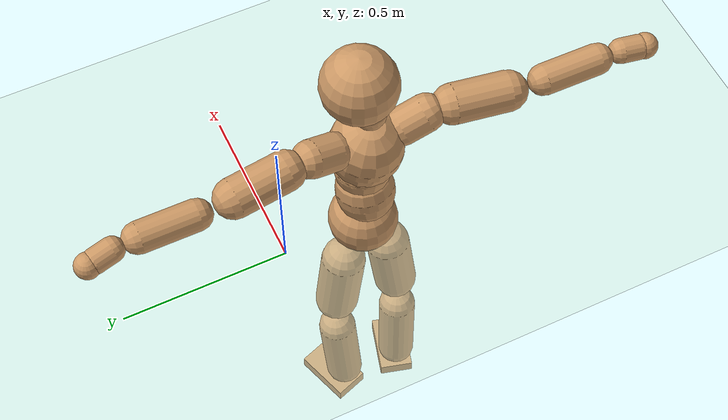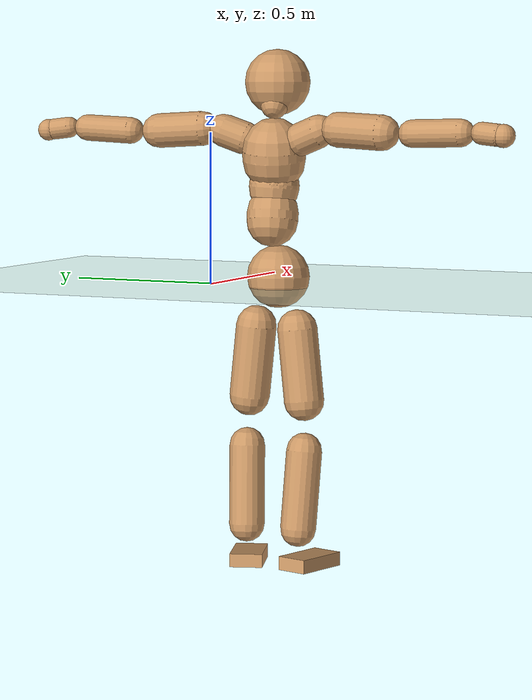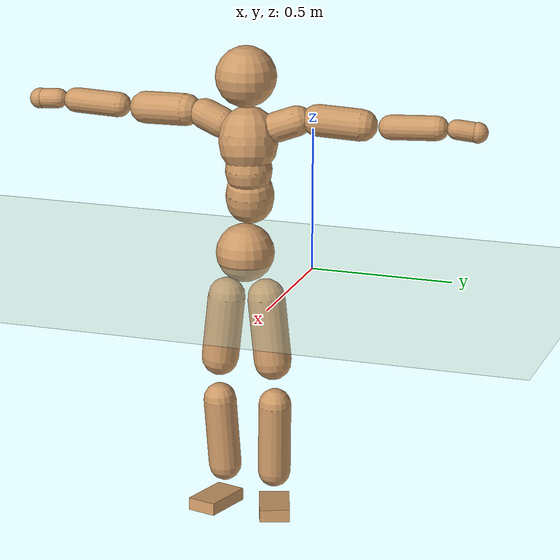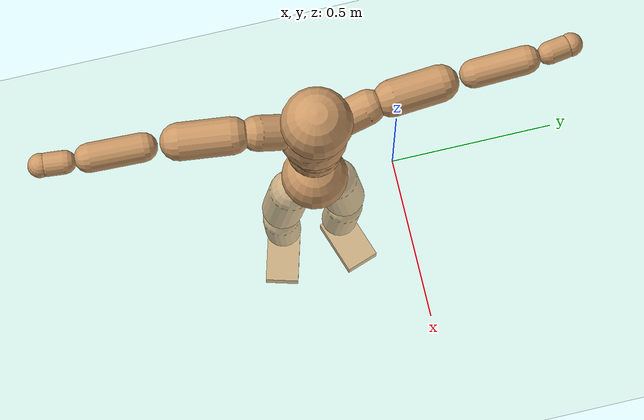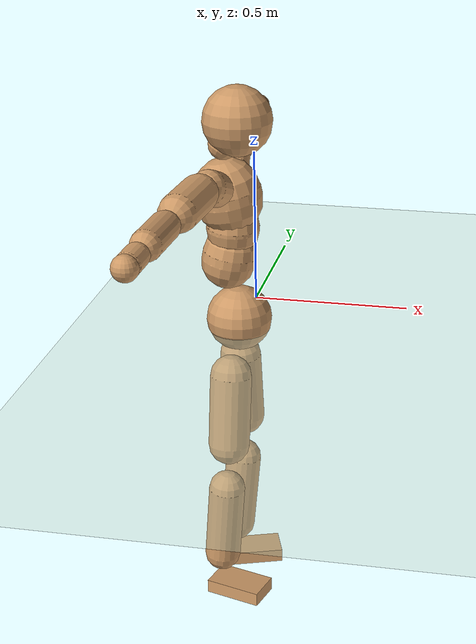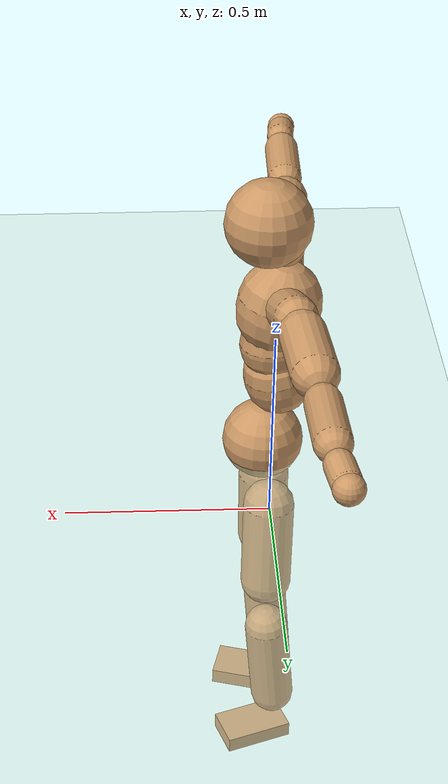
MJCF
<mujoco model="humanoid">
  <compiler coordinate="local"/>
  <default>
    <joint damping="0.0" armature="0.01" stiffness="0.0" limited="true"/>
    <geom conaffinity="1" condim="3" contype="7" margin="0.001" rgba="0.8 0.6 .4 1"/>
  </default>
  <asset>
    <texture type="skybox" builtin="gradient" rgb1=".4 .5 .6" rgb2="0 0 0" width="100" height="100"/>
    <texture builtin="flat" height="1278" mark="cross" markrgb="1 1 1" name="texgeom" random="0.01" rgb1="0.8 0.6 0.4" rgb2="0.8 0.6 0.4" type="cube" width="127"/>
    <texture builtin="checker" height="100" name="texplane" rgb1="0 0 0" rgb2="0.8 0.8 0.8" type="2d" width="100"/>
    <material name="MatPlane" reflectance="0.5" shininess="1" specular="1" texrepeat="60 60" texture="texplane"/>
    <material name="geom" texture="texgeom" texuniform="true"/>
  </asset>
  <worldbody>
    <light cutoff="100" diffuse="1 1 1" dir="-0 0 -1.3" directional="true" exponent="1" pos="0 0 1.3" specular=".1 .1 .1"/>
    <geom conaffinity="1" condim="3" name="floor" pos="0 0 0" rgba="0.8 0.9 0.8 1" size="100 100 .2" type="plane" material="MatPlane"/>
    <body name="Pelvis" pos="-0.0012 -0.246 0.0342">
      <freejoint name="Pelvis"/>
      <geom type="sphere" contype="1" conaffinity="1" density="500" size="0.1030" pos="0.0000 0.0000 0.0000" name="Pelvis"/>
      <body name="L_Hip" pos="-0.0166 0.0637 -0.0845">
        <joint name="L_Hip_x" type="hinge" pos="0 0 0" axis="1 0 0" stiffness="800" damping="80" armature="0.02" range="-180.0000 180.0000"/>
        <joint name="L_Hip_y" type="hinge" pos="0 0 0" axis="0 1 0" stiffness="800" damping="80" armature="0.02" range="-180.0000 180.0000"/>
        <joint name="L_Hip_z" type="hinge" pos="0 0 0" axis="0 0 1" stiffness="800" damping="80" armature="0.02" range="-180.0000 180.0000"/>
        <geom type="capsule" contype="1" conaffinity="1" density="500" fromto="0.0011 0.0087 -0.0778 0.0046 0.0347 -0.3114" size="0.0662" name="L_Hip"/>
        <body name="L_Knee" pos="0.0057 0.0434 -0.3892">
          <joint name="L_Knee_x" type="hinge" pos="0 0 0" axis="1 0 0" stiffness="800" damping="80" armature="0.02" range="-180.0000 180.0000"/>
          <joint name="L_Knee_y" type="hinge" pos="0 0 0" axis="0 1 0" stiffness="800" damping="80" armature="0.02" range="-180.0000 180.0000"/>
          <joint name="L_Knee_z" type="hinge" pos="0 0 0" axis="0 0 1" stiffness="800" damping="80" armature="0.02" range="-180.0000 180.0000"/>
          <geom type="capsule" contype="1" conaffinity="1" density="500" fromto="-0.0079 -0.0031 -0.0867 -0.0317 -0.0125 -0.3466" size="0.0582" name="L_Knee"/>
          <body name="L_Ankle" pos="-0.0396 -0.0156 -0.4333">
            <joint name="L_Ankle_x" type="hinge" pos="0 0 0" axis="1 0 0" stiffness="800" damping="80" armature="0.02" range="-180.0000 180.0000"/>
            <joint name="L_Ankle_y" type="hinge" pos="0 0 0" axis="0 1 0" stiffness="800" damping="80" armature="0.02" range="-180.0000 180.0000"/>
            <joint name="L_Ankle_z" type="hinge" pos="0 0 0" axis="0 0 1" stiffness="800" damping="80" armature="0.02" range="-180.0000 180.0000"/>
            <geom type="box" contype="1" conaffinity="1" density="500" pos="0.0619 0.0212 -0.0307" size="0.0909 0.0539 0.0221" quat="0.9864 0.0000 0.0000 0.1644" name="L_Ankle"/>
            <body name="L_Toe" pos="0.1239 0.0425 -0.0615">
              <joint name="L_Toe_x" type="hinge" pos="0 0 0" axis="1 0 0" stiffness="500" damping="50" armature="0.02" range="-180.0000 180.0000"/>
              <joint name="L_Toe_y" type="hinge" pos="0 0 0" axis="0 1 0" stiffness="500" damping="50" armature="0.02" range="-180.0000 180.0000"/>
              <joint name="L_Toe_z" type="hinge" pos="0 0 0" axis="0 0 1" stiffness="500" damping="50" armature="0.02" range="-180.0000 180.0000"/>
              <geom type="box" contype="1" conaffinity="1" density="500" pos="0.0000 0.0000 0.0300" size="0.0011 0.0026 0.0011" quat="0.9856 0.0000 0.0000 0.1690" name="L_Toe"/>
            </body>
          </body>
        </body>
      </body>
      <body name="R_Hip" pos="-0.012 -0.0654 -0.0925">
        <joint name="R_Hip_x" type="hinge" pos="0 0 0" axis="1 0 0" stiffness="800" damping="80" armature="0.02" range="-180.0000 180.0000"/>
        <joint name="R_Hip_y" type="hinge" pos="0 0 0" axis="0 1 0" stiffness="800" damping="80" armature="0.02" range="-180.0000 180.0000"/>
        <joint name="R_Hip_z" type="hinge" pos="0 0 0" axis="0 0 1" stiffness="800" damping="80" armature="0.02" range="-180.0000 180.0000"/>
        <geom type="capsule" contype="1" conaffinity="1" density="500" fromto="-0.0015 -0.0087 -0.0774 -0.0060 -0.0350 -0.3095" size="0.0657" name="R_Hip"/>
        <body name="R_Knee" pos="-0.0075 -0.0437 -0.3869">
          <joint name="R_Knee_x" type="hinge" pos="0 0 0" axis="1 0 0" stiffness="800" damping="80" armature="0.02" range="-180.0000 180.0000"/>
          <joint name="R_Knee_y" type="hinge" pos="0 0 0" axis="0 1 0" stiffness="800" damping="80" armature="0.02" range="-180.0000 180.0000"/>
          <joint name="R_Knee_z" type="hinge" pos="0 0 0" axis="0 0 1" stiffness="800" damping="80" armature="0.02" range="-180.0000 180.0000"/>
          <geom type="capsule" contype="1" conaffinity="1" density="500" fromto="-0.0075 0.0038 -0.0852 -0.0299 0.0151 -0.3409" size="0.0584" name="R_Knee"/>
          <body name="R_Ankle" pos="-0.0373 0.0189 -0.4261">
            <joint name="R_Ankle_x" type="hinge" pos="0 0 0" axis="1 0 0" stiffness="800" damping="80" armature="0.02" range="-180.0000 180.0000"/>
            <joint name="R_Ankle_y" type="hinge" pos="0 0 0" axis="0 1 0" stiffness="800" damping="80" armature="0.02" range="-180.0000 180.0000"/>
            <joint name="R_Ankle_z" type="hinge" pos="0 0 0" axis="0 0 1" stiffness="800" damping="80" armature="0.02" range="-180.0000 180.0000"/>
            <geom type="box" contype="1" conaffinity="1" density="500" pos="0.0662 -0.0185 -0.0311" size="0.0927 0.0534 0.0224" quat="0.9907 0.0000 0.0000 -0.1358" name="R_Ankle"/>
            <body name="R_Toe" pos="0.1325 -0.037 -0.0622">
              <joint name="R_Toe_x" type="hinge" pos="0 0 0" axis="1 0 0" stiffness="500" damping="50" armature="0.02" range="-180.0000 180.0000"/>
              <joint name="R_Toe_y" type="hinge" pos="0 0 0" axis="0 1 0" stiffness="500" damping="50" armature="0.02" range="-180.0000 180.0000"/>
              <joint name="R_Toe_z" type="hinge" pos="0 0 0" axis="0 0 1" stiffness="500" damping="50" armature="0.02" range="-180.0000 180.0000"/>
              <geom type="box" contype="1" conaffinity="1" density="500" pos="0.0000 0.0000 0.0316" size="0.0011 0.0026 0.0011" quat="0.9919 0.0000 0.0000 -0.1270" name="R_Toe"/>
            </body>
          </body>
        </body>
      </body>
      <body name="Torso" pos="-0.0441 0.0046 0.1279">
        <joint name="Torso_x" type="hinge" pos="0 0 0" axis="1 0 0" stiffness="1000" damping="100" armature="0.02" range="-180.0000 180.0000"/>
        <joint name="Torso_y" type="hinge" pos="0 0 0" axis="0 1 0" stiffness="1000" damping="100" armature="0.02" range="-180.0000 180.0000"/>
        <joint name="Torso_z" type="hinge" pos="0 0 0" axis="0 0 1" stiffness="1000" damping="100" armature="0.02" range="-180.0000 180.0000"/>
        <geom type="capsule" contype="1" conaffinity="1" density="500" fromto="0.0158 0.0026 0.0833 0.0105 0.0017 0.0555" size="0.0841" name="Torso"/>
        <body name="Spine" pos="0.0264 0.0043 0.1389">
          <joint name="Spine_x" type="hinge" pos="0 0 0" axis="1 0 0" stiffness="1000" damping="100" armature="0.02" range="-180.0000 180.0000"/>
          <joint name="Spine_y" type="hinge" pos="0 0 0" axis="0 1 0" stiffness="1000" damping="100" armature="0.02" range="-180.0000 180.0000"/>
          <joint name="Spine_z" type="hinge" pos="0 0 0" axis="0 0 1" stiffness="1000" damping="100" armature="0.02" range="-180.0000 180.0000"/>
          <geom type="capsule" contype="1" conaffinity="1" density="500" fromto="0.0018 -0.0017 0.0341 0.0012 -0.0011 0.0228" size="0.0822" name="Spine"/>
          <body name="Chest" pos="0.0031 -0.0029 0.0569">
            <joint name="Chest_x" type="hinge" pos="0 0 0" axis="1 0 0" stiffness="1000" damping="100" armature="0.02" range="-180.0000 180.0000"/>
            <joint name="Chest_y" type="hinge" pos="0 0 0" axis="0 1 0" stiffness="1000" damping="100" armature="0.02" range="-180.0000 180.0000"/>
            <joint name="Chest_z" type="hinge" pos="0 0 0" axis="0 0 1" stiffness="1000" damping="100" armature="0.02" range="-180.0000 180.0000"/>
            <geom type="capsule" contype="1" conaffinity="1" density="500" fromto="-0.0164 -0.0047 0.0900 -0.0109 -0.0031 0.0600" size="0.1038" name="Chest"/>
            <body name="Neck" pos="-0.0355 -0.0123 0.2176">
              <joint name="Neck_x" type="hinge" pos="0 0 0" axis="1 0 0" stiffness="500" damping="50" armature="0.02" range="-180.0000 180.0000"/>
              <joint name="Neck_y" type="hinge" pos="0 0 0" axis="0 1 0" stiffness="500" damping="50" armature="0.02" range="-180.0000 180.0000"/>
              <joint name="Neck_z" type="hinge" pos="0 0 0" axis="0 0 1" stiffness="500" damping="50" armature="0.02" range="-180.0000 180.0000"/>
              <geom type="capsule" contype="1" conaffinity="1" density="500" fromto="0.0108 0.0021 0.0180 0.0430 0.0085 0.0721" size="0.046" name="Neck"/>
              <body name="Head" pos="0.0538 0.0107 0.0902">
                <joint name="Head_x" type="hinge" pos="0 0 0" axis="1 0 0" stiffness="500" damping="50" armature="0.02" range="-180.0000 180.0000"/>
                <joint name="Head_y" type="hinge" pos="0 0 0" axis="0 1 0" stiffness="500" damping="50" armature="0.02" range="-180.0000 180.0000"/>
                <joint name="Head_z" type="hinge" pos="0 0 0" axis="0 0 1" stiffness="500" damping="50" armature="0.02" range="-180.0000 180.0000"/>
                <geom type="sphere" contype="1" conaffinity="1" density="500" size="0.1068" pos="0.0000 0.0000 0.0000" name="Head"/>
              </body>
            </body>
            <body name="L_Thorax" pos="-0.0209 0.0694 0.1169">
              <joint name="L_Thorax_x" type="hinge" pos="0 0 0" axis="1 0 0" stiffness="500" damping="50" armature="0.02" range="-180.0000 180.0000"/>
              <joint name="L_Thorax_y" type="hinge" pos="0 0 0" axis="0 1 0" stiffness="500" damping="50" armature="0.02" range="-180.0000 180.0000"/>
              <joint name="L_Thorax_z" type="hinge" pos="0 0 0" axis="0 0 1" stiffness="500" damping="50" armature="0.02" range="-180.0000 180.0000"/>
              <geom type="capsule" contype="1" conaffinity="1" density="500" fromto="-0.0039 0.0240 0.0086 -0.0154 0.0958 0.0345" size="0.0535" name="L_Thorax"/>
              <body name="L_Shoulder" pos="-0.0193 0.1198 0.0431">
                <joint name="L_Shoulder_x" type="hinge" pos="0 0 0" axis="1 0 0" stiffness="500" damping="50" armature="0.02" range="-720.0000 720.0000"/>
                <joint name="L_Shoulder_y" type="hinge" pos="0 0 0" axis="0 1 0" stiffness="500" damping="50" armature="0.02" range="-720.0000 720.0000"/>
                <joint name="L_Shoulder_z" type="hinge" pos="0 0 0" axis="0 0 1" stiffness="500" damping="50" armature="0.02" range="-720.0000 720.0000"/>
                <geom type="capsule" contype="1" conaffinity="1" density="500" fromto="-0.0047 0.0503 -0.0029 -0.0188 0.2014 -0.0114" size="0.0564" name="L_Shoulder"/>
                <body name="L_Elbow" pos="-0.0235 0.2517 -0.0143">
                  <joint name="L_Elbow_x" type="hinge" pos="0 0 0" axis="1 0 0" stiffness="500" damping="50" armature="0.02" range="-720.0000 720.0000"/>
                  <joint name="L_Elbow_y" type="hinge" pos="0 0 0" axis="0 1 0" stiffness="500" damping="50" armature="0.02" range="-720.0000 720.0000"/>
                  <joint name="L_Elbow_z" type="hinge" pos="0 0 0" axis="0 0 1" stiffness="500" damping="50" armature="0.02" range="-720.0000 720.0000"/>
                  <geom type="capsule" contype="1" conaffinity="1" density="500" fromto="-0.0014 0.0531 0.0026 -0.0056 0.2124 0.0105" size="0.0435" name="L_Elbow"/>
                  <body name="L_Wrist" pos="-0.007 0.2655 0.0131">
                    <joint name="L_Wrist_x" type="hinge" pos="0 0 0" axis="1 0 0" stiffness="300" damping="30" armature="0.02" range="-180.0000 180.0000"/>
                    <joint name="L_Wrist_y" type="hinge" pos="0 0 0" axis="0 1 0" stiffness="300" damping="30" armature="0.02" range="-180.0000 180.0000"/>
                    <joint name="L_Wrist_z" type="hinge" pos="0 0 0" axis="0 0 1" stiffness="300" damping="30" armature="0.02" range="-180.0000 180.0000"/>
                    <geom type="capsule" contype="1" conaffinity="1" density="500" fromto="-0.0031 0.0175 -0.0022 -0.0126 0.0701 -0.0087" size="0.0347" name="L_Wrist"/>
                    <body name="L_Hand" pos="-0.0157 0.0876 -0.0109">
                      <joint name="L_Hand_x" type="hinge" pos="0 0 0" axis="1 0 0" stiffness="300" damping="30" armature="0.02" range="-180.0000 180.0000"/>
                      <joint name="L_Hand_y" type="hinge" pos="0 0 0" axis="0 1 0" stiffness="300" damping="30" armature="0.02" range="-180.0000 180.0000"/>
                      <joint name="L_Hand_z" type="hinge" pos="0 0 0" axis="0 0 1" stiffness="300" damping="30" armature="0.02" range="-180.0000 180.0000"/>
                      <geom type="sphere" contype="1" conaffinity="1" density="500" size="0.0360" pos="0.0000 0.0000 0.0000" name="L_Hand"/>
                    </body>
                  </body>
                </body>
              </body>
            </body>
            <body name="R_Thorax" pos="-0.0256 -0.0805 0.1155">
              <joint name="R_Thorax_x" type="hinge" pos="0 0 0" axis="1 0 0" stiffness="500" damping="50" armature="0.02" range="-180.0000 180.0000"/>
              <joint name="R_Thorax_y" type="hinge" pos="0 0 0" axis="0 1 0" stiffness="500" damping="50" armature="0.02" range="-180.0000 180.0000"/>
              <joint name="R_Thorax_z" type="hinge" pos="0 0 0" axis="0 0 1" stiffness="500" damping="50" armature="0.02" range="-180.0000 180.0000"/>
              <geom type="capsule" contype="1" conaffinity="1" density="500" fromto="-0.0017 -0.0223 0.0090 -0.0070 -0.0892 0.0359" size="0.0538" name="R_Thorax"/>
              <body name="R_Shoulder" pos="-0.0087 -0.1114 0.0449">
                <joint name="R_Shoulder_x" type="hinge" pos="0 0 0" axis="1 0 0" stiffness="500" damping="50" armature="0.02" range="-720.0000 720.0000"/>
                <joint name="R_Shoulder_y" type="hinge" pos="0 0 0" axis="0 1 0" stiffness="500" damping="50" armature="0.02" range="-720.0000 720.0000"/>
                <joint name="R_Shoulder_z" type="hinge" pos="0 0 0" axis="0 0 1" stiffness="500" damping="50" armature="0.02" range="-720.0000 720.0000"/>
                <geom type="capsule" contype="1" conaffinity="1" density="500" fromto="-0.0066 -0.0517 -0.0027 -0.0264 -0.2068 -0.0106" size="0.0572" name="R_Shoulder"/>
                <body name="R_Elbow" pos="-0.033 -0.2586 -0.0133">
                  <joint name="R_Elbow_x" type="hinge" pos="0 0 0" axis="1 0 0" stiffness="500" damping="50" armature="0.02" range="-720.0000 720.0000"/>
                  <joint name="R_Elbow_y" type="hinge" pos="0 0 0" axis="0 1 0" stiffness="500" damping="50" armature="0.02" range="-720.0000 720.0000"/>
                  <joint name="R_Elbow_z" type="hinge" pos="0 0 0" axis="0 0 1" stiffness="500" damping="50" armature="0.02" range="-720.0000 720.0000"/>
                  <geom type="capsule" contype="1" conaffinity="1" density="500" fromto="-0.0013 -0.0539 0.0014 -0.0053 -0.2158 0.0056" size="0.0442" name="R_Elbow"/>
                  <body name="R_Wrist" pos="-0.0067 -0.2697 0.007">
                    <joint name="R_Wrist_x" type="hinge" pos="0 0 0" axis="1 0 0" stiffness="300" damping="30" armature="0.02" range="-180.0000 180.0000"/>
                    <joint name="R_Wrist_y" type="hinge" pos="0 0 0" axis="0 1 0" stiffness="300" damping="30" armature="0.02" range="-180.0000 180.0000"/>
                    <joint name="R_Wrist_z" type="hinge" pos="0 0 0" axis="0 0 1" stiffness="300" damping="30" armature="0.02" range="-180.0000 180.0000"/>
                    <geom type="capsule" contype="1" conaffinity="1" density="500" fromto="-0.0020 -0.0181 -0.0018 -0.0081 -0.0723 -0.0071" size="0.0356" name="R_Wrist"/>
                    <body name="R_Hand" pos="-0.0102 -0.0904 -0.0089">
                      <joint name="R_Hand_x" type="hinge" pos="0 0 0" axis="1 0 0" stiffness="300" damping="30" armature="0.02" range="-180.0000 180.0000"/>
                      <joint name="R_Hand_y" type="hinge" pos="0 0 0" axis="0 1 0" stiffness="300" damping="30" armature="0.02" range="-180.0000 180.0000"/>
                      <joint name="R_Hand_z" type="hinge" pos="0 0 0" axis="0 0 1" stiffness="300" damping="30" armature="0.02" range="-180.0000 180.0000"/>
                      <geom type="sphere" contype="1" conaffinity="1" density="500" size="0.0368" pos="0.0000 0.0000 0.0000" name="R_Hand"/>
                    </body>
                  </body>
                </body>
              </body>
            </body>
          </body>
        </body>
      </body>
    </body>
  </worldbody>
  <actuator>
    <motor name="L_Hip_x" joint="L_Hip_x" gear="500"/>
    <motor name="L_Hip_y" joint="L_Hip_y" gear="500"/>
    <motor name="L_Hip_z" joint="L_Hip_z" gear="500"/>
    <motor name="L_Knee_x" joint="L_Knee_x" gear="500"/>
    <motor name="L_Knee_y" joint="L_Knee_y" gear="500"/>
    <motor name="L_Knee_z" joint="L_Knee_z" gear="500"/>
    <motor name="L_Ankle_x" joint="L_Ankle_x" gear="500"/>
    <motor name="L_Ankle_y" joint="L_Ankle_y" gear="500"/>
    <motor name="L_Ankle_z" joint="L_Ankle_z" gear="500"/>
    <motor name="L_Toe_x" joint="L_Toe_x" gear="500"/>
    <motor name="L_Toe_y" joint="L_Toe_y" gear="500"/>
    <motor name="L_Toe_z" joint="L_Toe_z" gear="500"/>
    <motor name="R_Hip_x" joint="R_Hip_x" gear="500"/>
    <motor name="R_Hip_y" joint="R_Hip_y" gear="500"/>
    <motor name="R_Hip_z" joint="R_Hip_z" gear="500"/>
    <motor name="R_Knee_x" joint="R_Knee_x" gear="500"/>
    <motor name="R_Knee_y" joint="R_Knee_y" gear="500"/>
    <motor name="R_Knee_z" joint="R_Knee_z" gear="500"/>
    <motor name="R_Ankle_x" joint="R_Ankle_x" gear="500"/>
    <motor name="R_Ankle_y" joint="R_Ankle_y" gear="500"/>
    <motor name="R_Ankle_z" joint="R_Ankle_z" gear="500"/>
    <motor name="R_Toe_x" joint="R_Toe_x" gear="500"/>
    <motor name="R_Toe_y" joint="R_Toe_y" gear="500"/>
    <motor name="R_Toe_z" joint="R_Toe_z" gear="500"/>
    <motor name="Torso_x" joint="Torso_x" gear="500"/>
    <motor name="Torso_y" joint="Torso_y" gear="500"/>
    <motor name="Torso_z" joint="Torso_z" gear="500"/>
    <motor name="Spine_x" joint="Spine_x" gear="500"/>
    <motor name="Spine_y" joint="Spine_y" gear="500"/>
    <motor name="Spine_z" joint="Spine_z" gear="500"/>
    <motor name="Chest_x" joint="Chest_x" gear="500"/>
    <motor name="Chest_y" joint="Chest_y" gear="500"/>
    <motor name="Chest_z" joint="Chest_z" gear="500"/>
    <motor name="Neck_x" joint="Neck_x" gear="500"/>
    <motor name="Neck_y" joint="Neck_y" gear="500"/>
    <motor name="Neck_z" joint="Neck_z" gear="500"/>
    <motor name="Head_x" joint="Head_x" gear="500"/>
    <motor name="Head_y" joint="Head_y" gear="500"/>
    <motor name="Head_z" joint="Head_z" gear="500"/>
    <motor name="L_Thorax_x" joint="L_Thorax_x" gear="500"/>
    <motor name="L_Thorax_y" joint="L_Thorax_y" gear="500"/>
    <motor name="L_Thorax_z" joint="L_Thorax_z" gear="500"/>
    <motor name="L_Shoulder_x" joint="L_Shoulder_x" gear="500"/>
    <motor name="L_Shoulder_y" joint="L_Shoulder_y" gear="500"/>
    <motor name="L_Shoulder_z" joint="L_Shoulder_z" gear="500"/>
    <motor name="L_Elbow_x" joint="L_Elbow_x" gear="500"/>
    <motor name="L_Elbow_y" joint="L_Elbow_y" gear="500"/>
    <motor name="L_Elbow_z" joint="L_Elbow_z" gear="500"/>
    <motor name="L_Wrist_x" joint="L_Wrist_x" gear="500"/>
    <motor name="L_Wrist_y" joint="L_Wrist_y" gear="500"/>
    <motor name="L_Wrist_z" joint="L_Wrist_z" gear="500"/>
    <motor name="L_Hand_x" joint="L_Hand_x" gear="500"/>
    <motor name="L_Hand_y" joint="L_Hand_y" gear="500"/>
    <motor name="L_Hand_z" joint="L_Hand_z" gear="500"/>
    <motor name="R_Thorax_x" joint="R_Thorax_x" gear="500"/>
    <motor name="R_Thorax_y" joint="R_Thorax_y" gear="500"/>
    <motor name="R_Thorax_z" joint="R_Thorax_z" gear="500"/>
    <motor name="R_Shoulder_x" joint="R_Shoulder_x" gear="500"/>
    <motor name="R_Shoulder_y" joint="R_Shoulder_y" gear="500"/>
    <motor name="R_Shoulder_z" joint="R_Shoulder_z" gear="500"/>
    <motor name="R_Elbow_x" joint="R_Elbow_x" gear="500"/>
    <motor name="R_Elbow_y" joint="R_Elbow_y" gear="500"/>
    <motor name="R_Elbow_z" joint="R_Elbow_z" gear="500"/>
    <motor name="R_Wrist_x" joint="R_Wrist_x" gear="500"/>
    <motor name="R_Wrist_y" joint="R_Wrist_y" gear="500"/>
    <motor name="R_Wrist_z" joint="R_Wrist_z" gear="500"/>
    <motor name="R_Hand_x" joint="R_Hand_x" gear="500"/>
    <motor name="R_Hand_y" joint="R_Hand_y" gear="500"/>
    <motor name="R_Hand_z" joint="R_Hand_z" gear="500"/>
  </actuator>
  <contact>
    <exclude body1="Torso" body2="Chest"/>
    <exclude body1="Head" body2="Chest"/>
    <exclude body1="R_Knee" body2="R_Toe"/>
    <exclude body1="R_Knee" body2="L_Ankle"/>
    <exclude body1="R_Knee" body2="L_Toe"/>
    <exclude body1="L_Knee" body2="L_Toe"/>
    <exclude body1="L_Knee" body2="R_Ankle"/>
    <exclude body1="L_Knee" body2="R_Toe"/>
    <exclude body1="L_Shoulder" body2="Chest"/>
    <exclude body1="R_Shoulder" body2="Chest"/>
  </contact>
  <sensor/>
  <size njmax="700" nconmax="700"/>
</mujoco>
